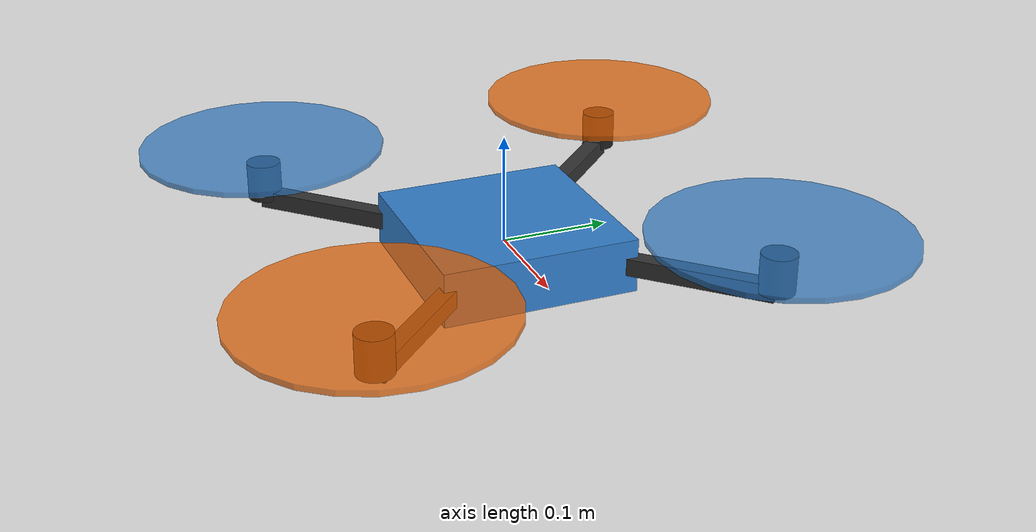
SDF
<?xml version="1.0"?>
<sdf version="1.8">
  <model name="x3_uav">
    <link name="base_link">

      <inertial>
        <mass>1.5</mass>
        <inertia>
          <ixx>0.029</ixx>
          <iyy>0.029</iyy>
          <izz>0.052</izz>
          <ixy>0</ixy><ixz>0</ixz><iyz>0</iyz>
        </inertia>
      </inertial>

      <!-- Simplified collision box covering full propeller span -->
      <collision name="collision">
        <geometry>
          <box><size>0.62 0.62 0.10</size></box>
        </geometry>
      </collision>

      <!-- ═══ BODY ═══ -->
      <visual name="body">
        <geometry>
          <box><size>0.18 0.18 0.05</size></box>
        </geometry>
        <material>
          <ambient>0.20 0.50 0.80 1</ambient>
          <diffuse>0.20 0.50 0.80 1</diffuse>
          <specular>0.4 0.4 0.4 1</specular>
        </material>
      </visual>

      <!-- ═══ ARMS (thin diagonal boxes, ±45°) ═══ -->
      <visual name="arm_fr">
        <pose>0.0885 -0.0885 0  0 0 -0.7854</pose>
        <geometry><box><size>0.25 0.016 0.016</size></box></geometry>
        <material>
          <ambient>0.15 0.15 0.15 1</ambient>
          <diffuse>0.20 0.20 0.20 1</diffuse>
        </material>
      </visual>

      <visual name="arm_fl">
        <pose>0.0885 0.0885 0  0 0 0.7854</pose>
        <geometry><box><size>0.25 0.016 0.016</size></box></geometry>
        <material>
          <ambient>0.15 0.15 0.15 1</ambient>
          <diffuse>0.20 0.20 0.20 1</diffuse>
        </material>
      </visual>

      <visual name="arm_rr">
        <pose>-0.0885 -0.0885 0  0 0 0.7854</pose>
        <geometry><box><size>0.25 0.016 0.016</size></box></geometry>
        <material>
          <ambient>0.15 0.15 0.15 1</ambient>
          <diffuse>0.20 0.20 0.20 1</diffuse>
        </material>
      </visual>

      <visual name="arm_rl">
        <pose>-0.0885 0.0885 0  0 0 -0.7854</pose>
        <geometry><box><size>0.25 0.016 0.016</size></box></geometry>
        <material>
          <ambient>0.15 0.15 0.15 1</ambient>
          <diffuse>0.20 0.20 0.20 1</diffuse>
        </material>
      </visual>

      <!-- ═══ MOTOR PODS (small cylinders at arm tips) ═══ -->
      <visual name="motor_fr">
        <pose>0.177 -0.177 0.018 0 0 0</pose>
        <geometry><cylinder><radius>0.016</radius><length>0.036</length></cylinder></geometry>
        <material><ambient>0.08 0.08 0.08 1</ambient><diffuse>0.12 0.12 0.12 1</diffuse></material>
      </visual>

      <visual name="motor_fl">
        <pose>0.177 0.177 0.018 0 0 0</pose>
        <geometry><cylinder><radius>0.016</radius><length>0.036</length></cylinder></geometry>
        <material><ambient>0.08 0.08 0.08 1</ambient><diffuse>0.12 0.12 0.12 1</diffuse></material>
      </visual>

      <visual name="motor_rr">
        <pose>-0.177 -0.177 0.018 0 0 0</pose>
        <geometry><cylinder><radius>0.016</radius><length>0.036</length></cylinder></geometry>
        <material><ambient>0.08 0.08 0.08 1</ambient><diffuse>0.12 0.12 0.12 1</diffuse></material>
      </visual>

      <visual name="motor_rl">
        <pose>-0.177 0.177 0.018 0 0 0</pose>
        <geometry><cylinder><radius>0.016</radius><length>0.036</length></cylinder></geometry>
        <material><ambient>0.08 0.08 0.08 1</ambient><diffuse>0.12 0.12 0.12 1</diffuse></material>
      </visual>

      <!-- ═══ PROPELLER DISCS ═══ -->
      <!-- CW  rotors (FR + RL) : orange -->
      <visual name="prop_fr">
        <pose>0.177 -0.177 0.052 0 0 0</pose>
        <geometry><cylinder><radius>0.115</radius><length>0.005</length></cylinder></geometry>
        <material>
          <ambient>0.95 0.40 0.00 0.75</ambient>
          <diffuse>0.95 0.40 0.00 0.75</diffuse>
        </material>
      </visual>

      <visual name="prop_rl">
        <pose>-0.177 0.177 0.052 0 0 0</pose>
        <geometry><cylinder><radius>0.115</radius><length>0.005</length></cylinder></geometry>
        <material>
          <ambient>0.95 0.40 0.00 0.75</ambient>
          <diffuse>0.95 0.40 0.00 0.75</diffuse>
        </material>
      </visual>

      <!-- CCW rotors (FL + RR) : blue-grey -->
      <visual name="prop_fl">
        <pose>0.177 0.177 0.052 0 0 0</pose>
        <geometry><cylinder><radius>0.115</radius><length>0.005</length></cylinder></geometry>
        <material>
          <ambient>0.20 0.50 0.80 0.75</ambient>
          <diffuse>0.20 0.50 0.80 0.75</diffuse>
        </material>
      </visual>

      <visual name="prop_rr">
        <pose>-0.177 -0.177 0.052 0 0 0</pose>
        <geometry><cylinder><radius>0.115</radius><length>0.005</length></cylinder></geometry>
        <material>
          <ambient>0.20 0.50 0.80 0.75</ambient>
          <diffuse>0.20 0.50 0.80 0.75</diffuse>
        </material>
      </visual>

    </link>
  </model>
</sdf>
